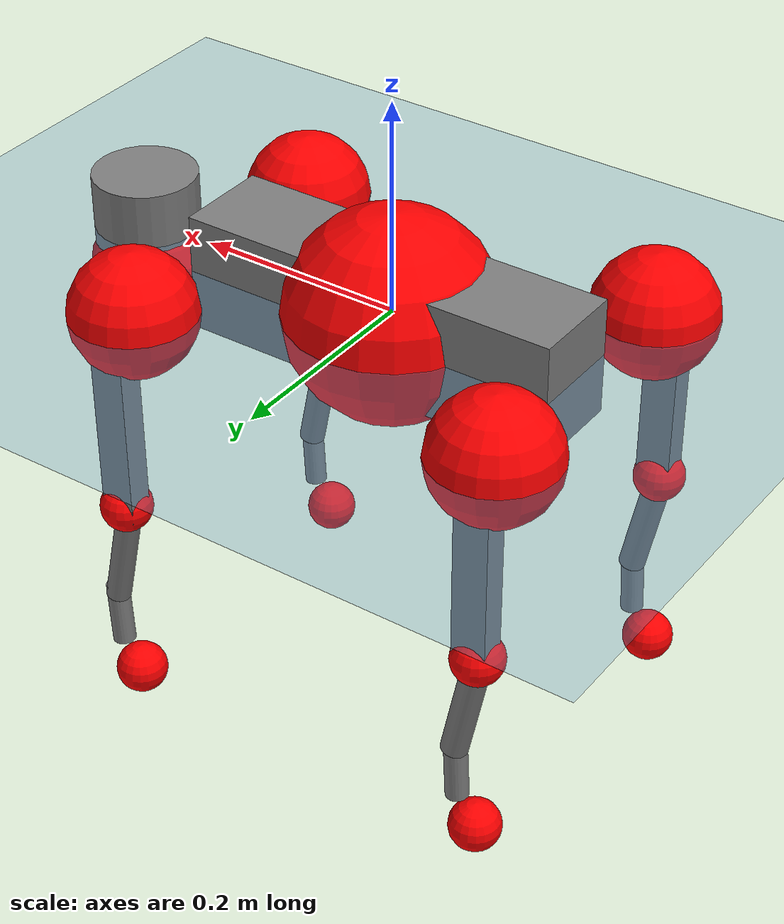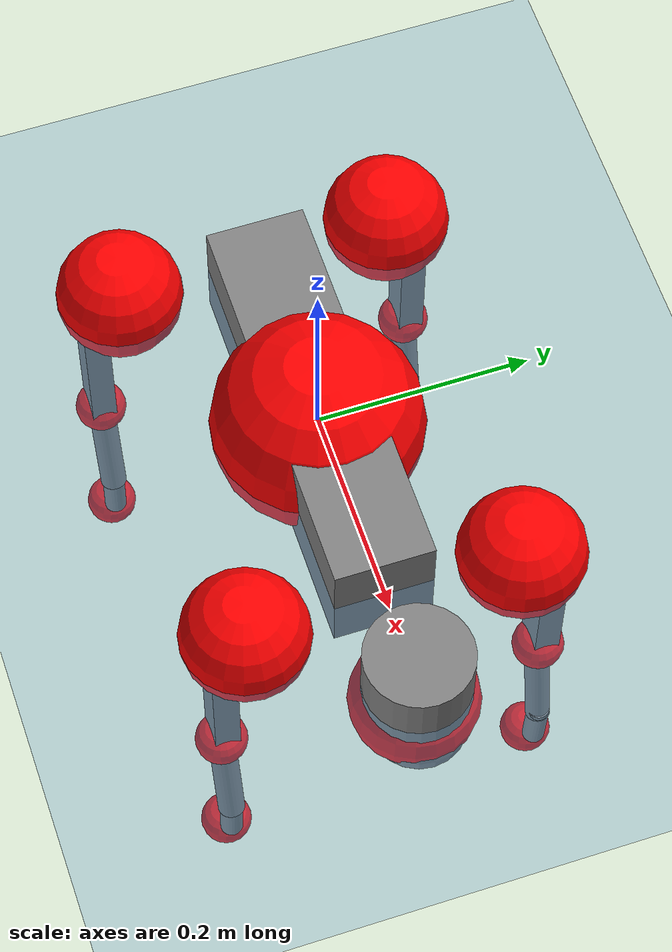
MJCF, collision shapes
<mujoco model="go2">
  <compiler angle="radian" assetdir="assets" balanceinertia="true" inertiafromgeom="false"/>

  <option timestep="0.005" density="1.2" viscosity="2e-05"/>

  <size nkey="1"/>

  <visual>
    <quality shadowsize="8192"/>
    <map shadowclip="0.5"/>
  </visual>

  <default>
    <default class="/">
      <geom contype="0" conaffinity="0" group="1" solref="-1000 -80"/>
      <site size="0.01 0.005 0.005" group="5"/>
      <general forcelimited="true" biastype="affine" gainprm="20" biasprm="0 -20 -0.5"/>
      <default class="go2">
        <joint armature="0.01" damping="0.01" frictionloss="0.2"/>
        <geom condim="1" margin="0.001"/>
        <default class="visual">
          <geom type="mesh" group="2"/>
        </default>
        <default class="collision">
          <geom group="3"/>
          <default class="foot">
            <geom size="0.022 0 0" condim="6" priority="1" friction="0.8 0.02 0.01" solimp="0.015 1 0.022"/>
          </default>
        </default>
        <default class="reward_collision_sphere">
          <geom group="5" rgba="1 0 0 1"/>
        </default>
      </default>
    </default>
  </default>

  <asset>
    <texture type="skybox" colorspace="auto" name="//unnamed_texture_0" builtin="gradient" rgb1="0.95 0.95 0.95" rgb2="0.95 0.95 0.95" width="100" height="600"/>
    <texture type="2d" colorspace="auto" name="texplane" builtin="checker" rgb1="0.345 0.575 0.748" rgb2="0.345 0.575 0.748" markrgb="1 1 1" width="512" height="512"/>
    <material name="MatPlane" class="/" texture="texplane" texuniform="true" texrepeat="2 2" specular="0.9"/>
    <material name="metal" class="/" rgba="0.9 0.95 0.95 1"/>
    <material name="black" class="/" rgba="0 0 0 1"/>
    <material name="white" class="/"/>
    <material name="gray" class="/" rgba="0.671705 0.692426 0.77427 1"/>
    <mesh name="base_0" class="/" file="base_0.obj"/>
    <mesh name="base_1" class="/" file="base_1.obj"/>
    <mesh name="base_2" class="/" file="base_2.obj"/>
    <mesh name="base_3" class="/" file="base_3.obj"/>
    <mesh name="base_4" class="/" file="base_4.obj"/>
    <mesh name="hip_0" class="/" file="hip_0.obj"/>
    <mesh name="hip_1" class="/" file="hip_1.obj"/>
    <mesh name="thigh_0" class="/" file="thigh_0.obj"/>
    <mesh name="thigh_1" class="/" file="thigh_1.obj"/>
    <mesh name="thigh_mirror_0" class="/" file="thigh_mirror_0.obj"/>
    <mesh name="thigh_mirror_1" class="/" file="thigh_mirror_1.obj"/>
    <mesh name="calf_0" class="/" file="calf_0.obj"/>
    <mesh name="calf_1" class="/" file="calf_1.obj"/>
    <mesh name="calf_mirror_0" class="/" file="calf_mirror_0.obj"/>
    <mesh name="calf_mirror_1" class="/" file="calf_mirror_1.obj"/>
    <mesh name="foot" class="/" file="foot.obj"/>
  </asset>

  <worldbody>
    <geom name="floor" class="/" size="100 100 0.125" type="plane" group="0" material="MatPlane"/>
    <light name="toplight_shadow" class="/" pos="0 0 5" dir="0.0990148 0.0990148 -0.990148" type="directional" ambient="0.04 0.04 0.04" diffuse="0.55 0.55 0.55" specular="0.12 0.12 0.12"/>
    <light name="toplight_fill" class="/" pos="0 0 5" dir="0.0990148 0.0990148 -0.990148" type="directional" castshadow="false" ambient="0.04 0.04 0.04" diffuse="0.3 0.3 0.3" specular="0.08 0.08 0.08"/>
    <body name="trunk" childclass="go2" pos="-0.000361323 0.000201155 -0.00224797" quat="1 -3.87312e-05 0.000308682 -0.000100893">
      <inertial pos="0.0174551 -0.00292352 -0.00432383" quat="-0.00111259 0.713715 -0.00237379 0.700431" mass="6.61824" diaginertia="0.0902227 0.15879 0.0151495"/>
      <joint name="//unnamed_joint_0" type="free" armature="0" damping="0" frictionloss="0"/>
      <geom name="//unnamed_geom_1" class="visual" material="black" mesh="base_0"/>
      <geom name="//unnamed_geom_2" class="visual" material="black" mesh="base_1"/>
      <geom name="//unnamed_geom_3" class="visual" material="black" mesh="base_2"/>
      <geom name="//unnamed_geom_4" class="visual" material="white" mesh="base_3"/>
      <geom name="//unnamed_geom_5" class="visual" material="gray" mesh="base_4"/>
      <geom name="trunk_1" class="collision" size="0.185147 0.046016 0.0561051" type="box"/>
      <geom name="trunk_2" class="collision" size="0.049215 0.0442935" pos="0.273116 0 0.00901214" type="cylinder"/>
      <geom name="trunk_3" class="collision" size="0.0462621" pos="0.280782 0 -0.0540729"/>
      <geom name="//unnamed_geom_9" class="reward_collision_sphere" size="0.09843"/>
      <geom name="//unnamed_geom_10" class="reward_collision_sphere" size="0.059058" pos="0.268325 0 -0.0405546"/>
      <site name="imu" pos="-0.037267 0.00455878 0.0519348" size="0.009843"/>
      <camera name="track" pos="0 -2.18676 0" quat="0.707107 0.707107 0 0" mode="trackcom"/>
      <camera name="ego_camera" pos="0.29899 0 0.0405546" quat="-0.5 -0.5 0.5 0.5"/>
      <body name="FL_hip" pos="0.183609 0.0513933 0.00161519" quat="1 -0.00011589 0.000320972 5.15933e-05">
        <inertial pos="-0.00239379 0.00151008 -5.07631e-05" quat="0.493383 0.501612 0.511141 0.493654" mass="0.620809" diaginertia="0.000686207 0.000922205 0.000282426"/>
        <joint name="FL_hip_joint" pos="0 0 0" axis="0.999897 0.0141005 -0.0027542" stiffness="0.00724397" range="-1.04417 1.07872" armature="0.0111546" damping="0.00473616" frictionloss="0.207506"/>
        <geom name="//unnamed_geom_11" class="visual" material="metal" mesh="hip_0"/>
        <geom name="//unnamed_geom_12" class="visual" material="gray" mesh="hip_1"/>
        <geom name="//unnamed_geom_13" class="collision" size="0.0452778 0.019686" pos="0 0.0874706 0" quat="0.707107 0.707107 0 0" type="cylinder"/>
        <geom name="//unnamed_geom_14" class="reward_collision_sphere" size="0.059058" pos="0 0.0765368 0"/>
        <body name="FL_thigh" pos="-3.37728e-05 0.106289 0.00166657" quat="1 1.80191e-05 -0.000219399 -0.00093156">
          <inertial pos="-0.00326594 -0.0242016 -0.026656" quat="0.830698 0.0841767 -0.0170484 0.550058" mass="1.12375" diaginertia="0.00464465 0.00912182 0.000529591"/>
          <joint name="FL_thigh_joint" pos="0 0 0" axis="-0.0019752 0.999997 0.00136702" range="-1.55208 3.47058" armature="0.00936084" damping="0.0121241" frictionloss="0.169722"/>
          <geom name="//unnamed_geom_15" class="visual" material="metal" mesh="thigh_0"/>
          <geom name="//unnamed_geom_16" class="visual" material="gray" mesh="thigh_1"/>
          <geom name="//unnamed_geom_17" class="collision" size="0.104828 0.0120577 0.0167331" pos="0 0 -0.0959793" quat="0.707107 0 0.707107 0" type="box"/>
          <body name="FL_calf" pos="0.00231519 -0.00255012 -0.194895" quat="0.999999 0.000153531 0.000732207 -0.0011739">
            <inertial pos="0.007014 -0.000525389 -0.126108" quat="0.71031 0.00330577 -0.000674811 0.70388" mass="0.225031" diaginertia="0.00118147 0.00227361 3.1449e-05"/>
            <joint name="FL_calf_joint" pos="0 0 0" axis="0.00438392 0.999988 -0.00238321" stiffness="0.00190726" range="-2.76673 -0.832949" armature="0.0104188" damping="0" frictionloss="0.216022"/>
            <geom name="//unnamed_geom_18" class="visual" material="gray" mesh="calf_0"/>
            <geom name="//unnamed_geom_19" class="visual" material="black" mesh="calf_1"/>
            <geom name="FL_calf0" class="collision" size="0.0118116 0.059058" pos="0.00766641 0 -0.0540729" quat="0.994493 0 -0.104807 0" type="cylinder"/>
            <geom name="//unnamed_geom_21" class="collision" size="0.0108273 0.0319897" pos="0.019166 0 -0.13338" quat="0.999688 0 0.0249974 0" type="cylinder"/>
            <geom name="//unnamed_geom_22" class="visual" pos="0 0 -0.191959" quat="1 0 0 0" material="black" mesh="foot"/>
            <geom name="FL_foot" class="foot" size="0.0172643" pos="-0.0019166 0 -0.191959"/>
            <geom name="//unnamed_geom_24" class="reward_collision_sphere" size="0.0246075"/>
            <geom name="//unnamed_geom_25" class="reward_collision_sphere" size="0.0246075" pos="-0.0019166 0 -0.191959"/>
            <site name="FL_foot" class="foot" pos="-0.0019166 0 -0.191959" size="0.009843"/>
          </body>
        </body>
      </body>
      <body name="FR_hip" pos="0.183956 -0.0502849 0.000991864" quat="1 7.378e-06 1.64604e-06 -9.35629e-06">
        <inertial pos="-0.00229365 -0.00158038 -0.000553908" quat="0.499508 0.504874 0.499912 0.495663" mass="0.669031" diaginertia="0.000725593 0.000971301 0.000292695"/>
        <joint name="FR_hip_joint" pos="0 0 0" axis="1 -7.38219e-05 8.6791e-05" stiffness="0.00535706" range="-1.1053 1.03168" armature="0.00851186" damping="0.0143884" frictionloss="0.169757"/>
        <geom name="//unnamed_geom_26" class="visual" pos="0 1.67409e-09 7.18051e-08" quat="4.63268e-05 1 0 0" material="metal" mesh="hip_0"/>
        <geom name="//unnamed_geom_27" class="visual" pos="0 2.7139e-09 -1.77601e-07" quat="4.63268e-05 1 0 0" material="gray" mesh="hip_1"/>
        <geom name="//unnamed_geom_28" class="collision" size="0.0452778 0.019686" pos="0 -0.0874706 0" quat="0.707107 0.707107 0 0" type="cylinder"/>
        <geom name="//unnamed_geom_29" class="reward_collision_sphere" size="0.059058" pos="0 -0.0765368 0"/>
        <body name="FR_thigh" pos="-0.000251396 -0.101458 -0.00134395" quat="1 0.000288243 -0.000349806 -1.86044e-05">
          <inertial pos="-0.00382576 0.0236195 -0.0289456" quat="0.561886 -0.0141592 0.0825549 0.822963" mass="1.02778" diaginertia="0.00463259 0.00905396 0.000511057"/>
          <joint name="FR_thigh_joint" pos="0 0 0" axis="0.00432576 -0.999929 -0.0111174" stiffness="0.00112757" range="-3.43943 1.61185" armature="0.00987877" damping="0" frictionloss="0.219507"/>
          <geom name="//unnamed_geom_30" class="visual" material="metal" mesh="thigh_mirror_0"/>
          <geom name="//unnamed_geom_31" class="visual" material="gray" mesh="thigh_mirror_1"/>
          <geom name="//unnamed_geom_32" class="collision" size="0.104828 0.0120577 0.0167331" pos="0 0 -0.0959793" quat="0.707107 0 0.707107 0" type="box"/>
          <body name="FR_calf" pos="0.00252545 -0.00267724 -0.191552" quat="1 -6.12336e-05 3.0417e-05 -4.40346e-05">
            <inertial pos="0.0060817 0.00043915 -0.124848" quat="0.701704 -0.0052566 -0.00604091 0.712424" mass="0.232806" diaginertia="0.00116394 0.0022098 3.16422e-05"/>
            <joint name="FR_calf_joint" pos="0 0 0" axis="-0.00563548 -0.999981 -0.0025174" range="0.803315 2.76371" armature="0.0100615" damping="0.0048488" frictionloss="0.170781"/>
            <geom name="//unnamed_geom_33" class="visual" material="gray" mesh="calf_mirror_0"/>
            <geom name="//unnamed_geom_34" class="visual" material="black" mesh="calf_mirror_1"/>
            <geom name="FR_calf0" class="collision" size="0.0127959 0.059058" pos="0.00958302 0 -0.0540729" quat="0.995004 0 -0.0998334 0" type="cylinder"/>
            <geom name="//unnamed_geom_36" class="collision" size="0.0108273 0.0319897" pos="0.019166 0 -0.13338" quat="0.999688 0 0.0249974 0" type="cylinder"/>
            <geom name="//unnamed_geom_37" class="visual" pos="0 0 -0.191959" quat="1 0 0 0" material="black" mesh="foot"/>
            <geom name="FR_foot" class="foot" size="0.0207485" pos="-0.0019166 0 -0.191959"/>
            <geom name="//unnamed_geom_39" class="reward_collision_sphere" size="0.0246075"/>
            <geom name="//unnamed_geom_40" class="reward_collision_sphere" size="0.0246075" pos="-0.0019166 0 -0.191959"/>
            <site name="FR_foot" class="foot" pos="-0.0019166 0 -0.191959" size="0.009843"/>
          </body>
        </body>
      </body>
      <body name="RL_hip" pos="-0.187857 0.0520073 0.000497078" quat="1 6.30131e-05 -2.74457e-05 7.71848e-05">
        <inertial pos="0.00573373 0.00521176 -0.000106732" quat="0.509007 0.496288 0.490563 0.503942" mass="0.643826" diaginertia="0.000691785 0.000929269 0.000266096"/>
        <joint name="RL_hip_joint" pos="0 0 0" axis="-0.999972 0.00155393 -0.00732664" stiffness="0.00169741" range="-1.04924 1.00023" armature="0.00834847" damping="0" frictionloss="0.192707"/>
        <geom name="//unnamed_geom_41" class="visual" pos="-4.97322e-10 0 -9.74866e-08" quat="4.63268e-05 0 1 0" material="metal" mesh="hip_0"/>
        <geom name="//unnamed_geom_42" class="visual" pos="-8.06218e-10 0 -8.64567e-08" quat="4.63268e-05 0 1 0" material="gray" mesh="hip_1"/>
        <geom name="//unnamed_geom_43" class="collision" size="0.0452778 0.019686" pos="0 0.0874706 0" quat="0.707107 0.707107 0 0" type="cylinder"/>
        <geom name="//unnamed_geom_44" class="reward_collision_sphere" size="0.059058" pos="0 0.0765368 0"/>
        <body name="RL_thigh" pos="-0.0018895 0.101354 0.000265015" quat="1 -1.63061e-05 -4.56084e-05 -1.02197e-05">
          <inertial pos="-0.00343286 -0.0214405 -0.0286539" quat="0.83005 0.0850054 -0.0203575 0.550796" mass="1.09905" diaginertia="0.00478801 0.00891405 0.000518074"/>
          <joint name="RL_thigh_joint" pos="0 0 0" axis="-0.00338148 0.99995 0.00941948" stiffness="0.0123693" range="-0.515218 4.55589" armature="0.00929933" damping="0" frictionloss="0.195875"/>
          <geom name="//unnamed_geom_45" class="visual" material="metal" mesh="thigh_0"/>
          <geom name="//unnamed_geom_46" class="visual" material="gray" mesh="thigh_1"/>
          <geom name="//unnamed_geom_47" class="collision" size="0.104828 0.0120577 0.0167331" pos="0 0 -0.0959793" quat="0.707107 0 0.707107 0" type="box"/>
          <body name="RL_calf" pos="-0.0016281 -0.00177498 -0.192303" quat="1 3.38346e-06 2.30533e-06 8.00155e-07">
            <inertial pos="0.00609143 -0.000447592 -0.127519" quat="0.70283 0.00242702 -0.00818859 0.711307" mass="0.229835" diaginertia="0.00120299 0.00226208 3.05504e-05"/>
            <joint name="RL_calf_joint" pos="0 0 0" axis="0.00138419 0.999999 -0.000563725" range="-2.71402 -0.833581" armature="0.00869013" damping="0.00458608" frictionloss="0.217293"/>
            <geom name="//unnamed_geom_48" class="visual" material="gray" mesh="calf_0"/>
            <geom name="//unnamed_geom_49" class="visual" material="black" mesh="calf_1"/>
            <geom name="RL_calf0" class="collision" size="0.0127959 0.059058" pos="0.00958302 0 -0.0540729" quat="0.995004 0 -0.0998334 0" type="cylinder"/>
            <geom name="//unnamed_geom_51" class="collision" size="0.0108273 0.0319897" pos="0.019166 0 -0.13338" quat="0.999688 0 0.0249974 0" type="cylinder"/>
            <geom name="//unnamed_geom_52" class="visual" pos="0 0 -0.191959" quat="1 0 0 0" material="black" mesh="foot"/>
            <geom name="RL_foot" class="foot" size="0.0188516" pos="-0.0019166 0 -0.191959"/>
            <geom name="//unnamed_geom_54" class="reward_collision_sphere" size="0.0246075"/>
            <geom name="//unnamed_geom_55" class="reward_collision_sphere" size="0.0246075" pos="-0.0019166 0 -0.191959"/>
            <site name="RL_foot" class="foot" pos="-0.0019166 0 -0.191959" size="0.009843"/>
          </body>
        </body>
      </body>
      <body name="RR_hip" pos="-0.185824 -0.0543578 -0.000738288" quat="0.999999 -0.000641414 -0.00103192 -0.000420561">
        <inertial pos="0.00239828 -0.00255909 0.0026439" quat="0.497382 0.500057 0.498246 0.504286" mass="0.637196" diaginertia="0.000704417 0.000920068 0.000272191"/>
        <joint name="RR_hip_joint" pos="0 0 0" axis="-0.999999 0.00153546 0.000148714" range="-1.09934 1.09768" armature="0.009884" damping="0" frictionloss="0.193864"/>
        <geom name="//unnamed_geom_56" class="visual" pos="5.01999e-10 1.67409e-09 -1.69292e-07" quat="2.14617e-09 4.63268e-05 4.63268e-05 -1" material="metal" mesh="hip_0"/>
        <geom name="//unnamed_geom_57" class="visual" pos="7.94651e-10 2.7139e-09 9.11448e-08" quat="2.14617e-09 4.63268e-05 4.63268e-05 -1" material="gray" mesh="hip_1"/>
        <geom name="//unnamed_geom_58" class="collision" size="0.0452778 0.019686" pos="0 -0.0874706 0" quat="0.707107 0.707107 0 0" type="cylinder"/>
        <geom name="//unnamed_geom_59" class="reward_collision_sphere" size="0.059058" pos="0 -0.0765368 0"/>
        <body name="RR_thigh" pos="-0.000905981 -0.106066 0.00180596" quat="1 3.6788e-06 -8.98109e-07 -1.70433e-06">
          <inertial pos="-0.00116478 0.0254508 -0.0306184" quat="0.551004 -0.0201746 0.0848799 0.829929" mass="1.03019" diaginertia="0.00450365 0.00890587 0.000500084"/>
          <joint name="RR_thigh_joint" pos="0 0 0" axis="0.0055037 -0.999817 0.0182983" range="-4.53185 0.517954" armature="0.00969076" damping="0.0141372" frictionloss="0.195541"/>
          <geom name="//unnamed_geom_60" class="visual" material="metal" mesh="thigh_mirror_0"/>
          <geom name="//unnamed_geom_61" class="visual" material="gray" mesh="thigh_mirror_1"/>
          <geom name="//unnamed_geom_62" class="collision" size="0.104828 0.0120577 0.0167331" pos="0 0 -0.0959793" quat="0.707107 0 0.707107 0" type="box"/>
          <body name="RR_calf" pos="-0.0022911 0.000420897 -0.193392" quat="1 -9.21828e-05 -0.000291161 -0.000315284">
            <inertial pos="0.00556495 0.000770225 -0.127214" quat="0.709133 0.00578091 -0.00234845 0.705047" mass="0.227556" diaginertia="0.00117924 0.00235846 3.16934e-05"/>
            <joint name="RR_calf_joint" pos="0 0 0" axis="-0.00211073 -0.999998 -0.000702979" stiffness="0.0106538" range="0.855189 2.73668" armature="0.00852505" damping="0.0110644" frictionloss="0.197802"/>
            <geom name="//unnamed_geom_63" class="visual" material="gray" mesh="calf_mirror_0"/>
            <geom name="//unnamed_geom_64" class="visual" material="black" mesh="calf_mirror_1"/>
            <geom name="RR_calf0" class="collision" size="0.0127959 0.059058" pos="0.00958302 0 -0.0540729" quat="0.995004 0 -0.0998334 0" type="cylinder"/>
            <geom name="//unnamed_geom_66" class="collision" size="0.0108273 0.0319897" pos="0.019166 0 -0.13338" quat="0.999688 0 0.0249974 0" type="cylinder"/>
            <geom name="//unnamed_geom_67" class="visual" pos="0 0 -0.191959" quat="1 0 0 0" material="black" mesh="foot"/>
            <geom name="RR_foot" class="foot" size="0.0202705" pos="-0.0019166 0 -0.191959"/>
            <geom name="//unnamed_geom_69" class="reward_collision_sphere" size="0.0246075"/>
            <geom name="//unnamed_geom_70" class="reward_collision_sphere" size="0.0246075" pos="-0.0019166 0 -0.191959"/>
            <site name="RR_foot" class="foot" pos="-0.0019166 0 -0.191959" size="0.009843"/>
          </body>
        </body>
      </body>
    </body>
  </worldbody>

  <contact>
    <pair class="/" geom1="floor" geom2="FL_foot" name="//unnamed_contact_0"/>
    <pair class="/" geom1="floor" geom2="FR_foot" name="//unnamed_contact_1"/>
    <pair class="/" geom1="floor" geom2="RL_foot" name="//unnamed_contact_2"/>
    <pair class="/" geom1="floor" geom2="RR_foot" name="//unnamed_contact_3"/>
  </contact>

  <actuator>
    <general name="FL_hip" class="/" joint="FL_hip_joint" forcerange="-24.2037 24.2037" gainprm="19.2665" biasprm="0 -19.2665 -0.500844"/>
    <general name="FL_thigh" class="/" joint="FL_thigh_joint" forcerange="-21.9194 21.9194" gainprm="19.2665" biasprm="0 -19.2665 -0.500844"/>
    <general name="FL_calf" class="/" joint="FL_calf_joint" forcerange="-46.0426 46.0426" gainprm="19.2665" biasprm="0 -19.2665 -0.500844"/>
    <general name="FR_hip" class="/" joint="FR_hip_joint" forcerange="-21.661 21.661" gainprm="19.2665" biasprm="0 -19.2665 -0.500844"/>
    <general name="FR_thigh" class="/" joint="FR_thigh_joint" forcerange="-23.9994 23.9994" gainprm="19.2665" biasprm="0 -19.2665 -0.500844"/>
    <general name="FR_calf" class="/" joint="FR_calf_joint" forcerange="-39.8314 39.8314" gainprm="19.2665" biasprm="0 -19.2665 -0.500844"/>
    <general name="RL_hip" class="/" joint="RL_hip_joint" forcerange="-23.3723 23.3723" gainprm="19.2665" biasprm="0 -19.2665 -0.500844"/>
    <general name="RL_thigh" class="/" joint="RL_thigh_joint" forcerange="-20.9751 20.9751" gainprm="19.2665" biasprm="0 -19.2665 -0.500844"/>
    <general name="RL_calf" class="/" joint="RL_calf_joint" forcerange="-46.3329 46.3329" gainprm="19.2665" biasprm="0 -19.2665 -0.500844"/>
    <general name="RR_hip" class="/" joint="RR_hip_joint" forcerange="-23.5018 23.5018" gainprm="19.2665" biasprm="0 -19.2665 -0.500844"/>
    <general name="RR_thigh" class="/" joint="RR_thigh_joint" forcerange="-20.9702 20.9702" gainprm="19.2665" biasprm="0 -19.2665 -0.500844"/>
    <general name="RR_calf" class="/" joint="RR_calf_joint" forcerange="-49.3705 49.3705" gainprm="19.2665" biasprm="0 -19.2665 -0.500844"/>
  </actuator>

  <sensor>
    <gyro site="imu" name="imu_angular_velocity"/>
    <velocimeter site="imu" name="imu_linear_velocity"/>
    <framelinvel objtype="site" objname="FL_foot" name="FL_foot_global_linear_velocity"/>
    <framelinvel objtype="site" objname="FR_foot" name="FR_foot_global_linear_velocity"/>
    <framelinvel objtype="site" objname="RL_foot" name="RL_foot_global_linear_velocity"/>
    <framelinvel objtype="site" objname="RR_foot" name="RR_foot_global_linear_velocity"/>
  </sensor>

  <keyframe>
    <key name="home" qpos="0 0 0.325 1 0 0 0 0.1 0.8 -1.5 -0.1 -0.8 1.5 -0.1 0.8 -1.5 0.1 -0.8 1.5"/>
  </keyframe>
</mujoco>
